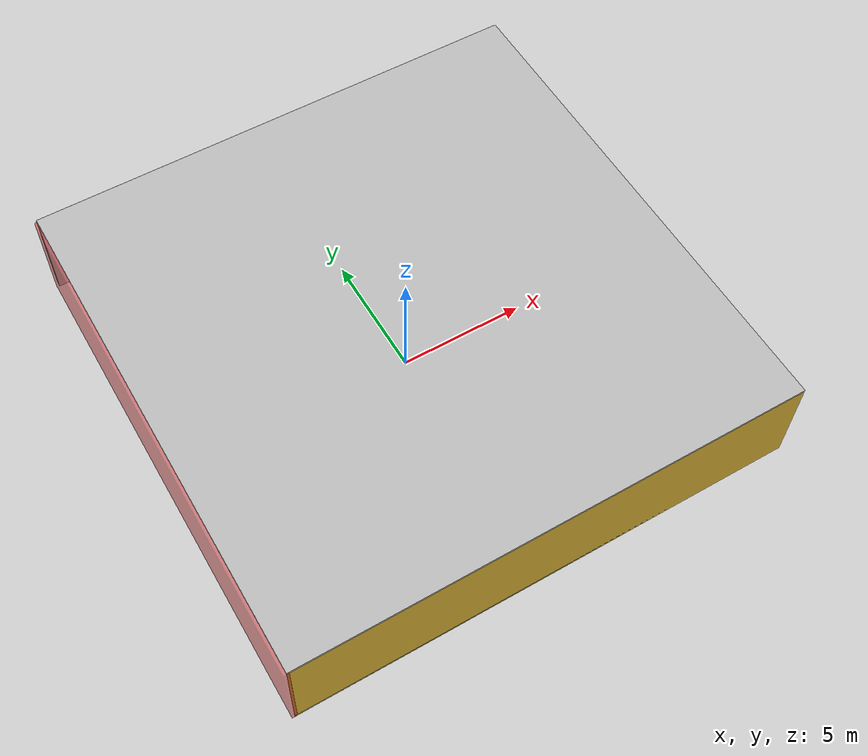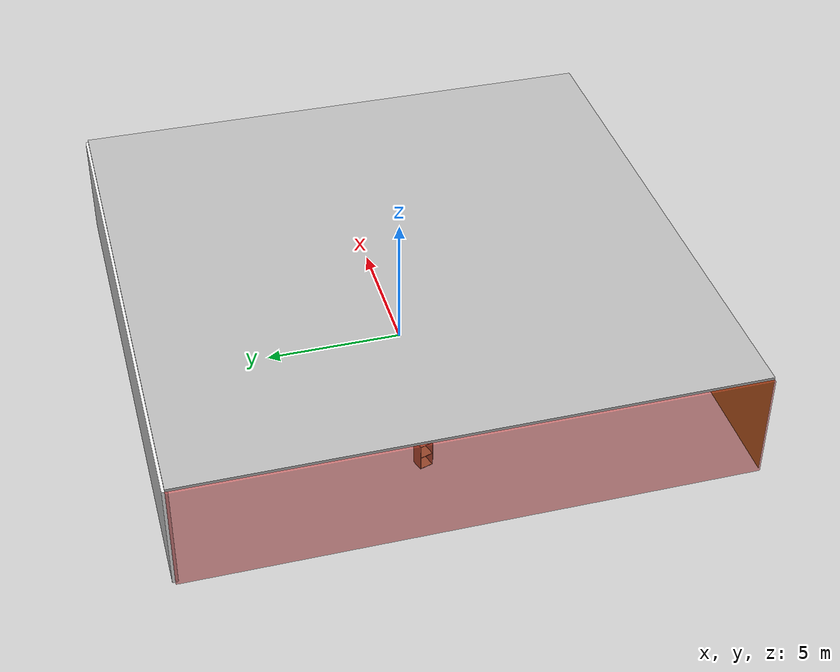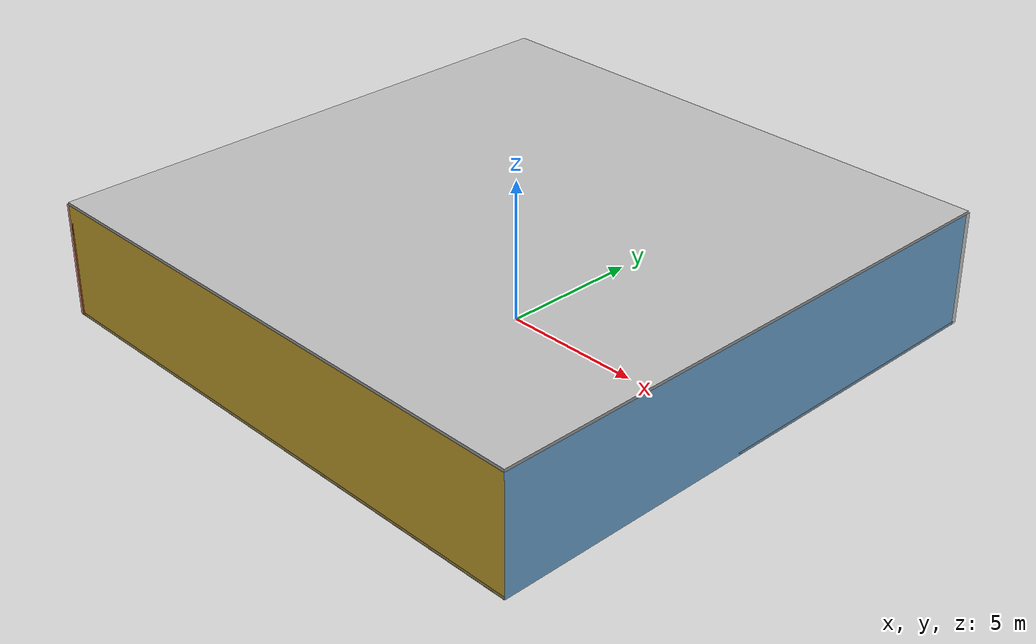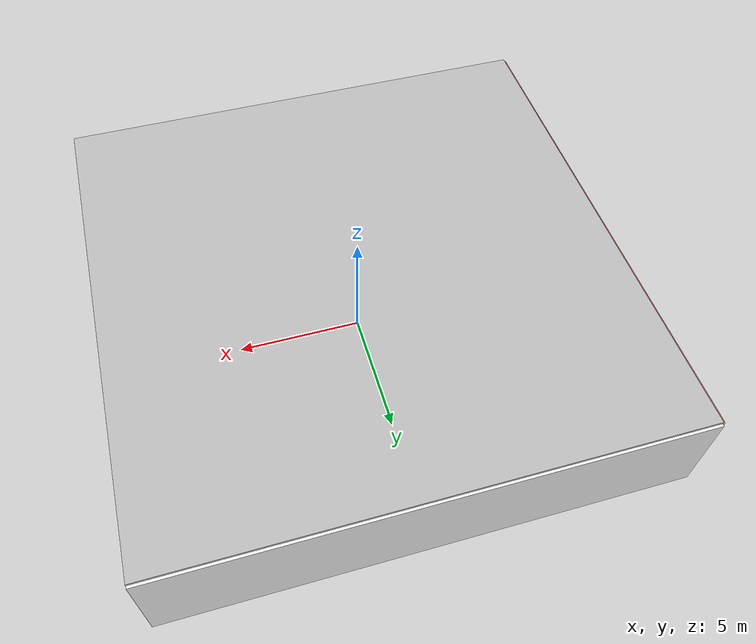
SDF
<sdf version="1.4">
 <world name="default">
  <physics type="ode">
   <max_step_size>0.001</max_step_size>
   <real_time_factor>1</real_time_factor>
   <real_time_update_rate>1000</real_time_update_rate>
   <gravity>0 0 -9.8</gravity>
  </physics>
  <scene><ambient>0.4 0.4 0.4 1</ambient><background>0.7 0.7 0.7 1</background><shadows>1</shadows></scene>
  <model name="Surrounding">
   <static>1</static>
   <link name="Ceiling">
    <collision name="Ceiling_Collision"><geometry><box><size>20 20 0.1</size></box></geometry></collision>
    <visual name="Ceiling_Visual">
     <geometry><box><size>20 20 0.1</size></box></geometry>
     <material>
      <script><uri>file://media/materials/scripts/gazebo.material</uri><name>Gazebo/PioneerBody</name></script>
     </material>
    </visual>
    <pose>0 0 4.05 0 0 0</pose>
   </link>
   <link name="Wall_South">
    <collision name="Wall_South_Collision">
     <geometry><box><size>20 0 4</size></box></geometry>
     <pose>0 0 2 0 -0 0</pose>
    </collision>
    <visual name="Wall_South_Visual">
     <pose>0 0 2 0 -0 0</pose>
     <geometry><box><size>20 0 4</size></box></geometry>
     <material>
      <script><uri>file://media/materials/scripts/gazebo.material</uri><name>Gazebo/Gold</name></script>
     </material>
    </visual>
    <velocity_decay><linear>0</linear><angular>0</angular></velocity_decay>
    <pose>0 -10 0 0 -0 0</pose>
   </link>
   <link name="Wall_East">
    <collision name="Wall_21_Collision">
     <geometry><box><size>20 0 4</size></box></geometry>
     <pose>0 0 2 0 -0 0</pose>
    </collision>
    <visual name="Wall_21_Visual">
     <pose>0 0 2 0 -0 0</pose>
     <geometry><box><size>20 0 4</size></box></geometry>
     <material>
      <script><uri>file://media/materials/scripts/gazebo.material</uri><name>Gazebo/SkyBlue</name></script>
     </material>
    </visual>
    <velocity_decay><linear>0</linear><angular>0</angular></velocity_decay>
    <pose>10 0 0 0 -0 1.5708</pose>
   </link>
   <link name="Wall_North">
    <collision name="Wall_22_Collision">
     <geometry><box><size>20 0.2 4</size></box></geometry>
     <pose>0 0 2 0 -0 0</pose>
    </collision>
    <visual name="Wall_22_Visual">
     <pose>0 0 2 0 -0 0</pose>
     <geometry><box><size>20 0.2 4</size></box></geometry>
     <material>
      <script><uri>file://media/materials/scripts/gazebo.material</uri><name>Gazebo/White</name></script>
     </material>
    </visual>
    <velocity_decay><linear>0</linear><angular>0</angular></velocity_decay>
    <pose>0 10 0 0 -0 0</pose>
   </link>
   <link name="Wall_West">
    <collision name="Wall_23_Collision">
     <geometry><box><size>20 0.2 4</size></box></geometry>
     <pose>0 0 2 0 -0 0</pose>
    </collision>
    <visual name="Wall_23_Visual">
     <pose>0 0 2 0 -0 0</pose>
     <geometry><box><size>20 0.2 4</size></box></geometry>
     <material>
      <script><uri>file://media/materials/scripts/gazebo.material</uri><name>Gazebo/RedTransparent</name></script>
     </material>
    </visual>
    <velocity_decay><linear>0</linear><angular>0</angular></velocity_decay>
    <pose>-10 0 0 0 0 -1.5708</pose>
   </link>
   <link name="Ground_link">
    <collision name="collision">
     <pose>0 0 .05 0 -0 0</pose>
     <geometry><box><size>20 20 0.1</size></box></geometry>
    </collision>
    <visual name="visual">
     <pose>0 0 .05 0 -0 0</pose>
     <geometry><box><size>20 20 0.1</size></box></geometry>
     <material>
      <script><uri>file://media/materials/scripts/gazebo.material</uri><name>Gazebo/GreyTransparent</name></script>
     </material>
    </visual>
   </link>
   <static>1</static>
  </model>
  <spherical_coordinates>
   <surface_model>EARTH_WGS84</surface_model>
   <latitude_deg>0</latitude_deg>
   <longitude_deg>0</longitude_deg>
   <elevation>0</elevation>
   <heading_deg>0</heading_deg>
  </spherical_coordinates>
  <light name="lightball_0" type="diffuse">
   <diffuse>0.8 0.8 0.8 1</diffuse>
   <specular>0.2 0.2 0.2 1</specular>
   <attenuation>
    <range>100</range>
    <constant>0.7</constant>
    <linear>0.01</linear>
    <quadratic>0.001</quadratic>
   </attenuation>
   <direction>-0.5 0.1 -0.9</direction>
   <pose>-4.70055550156 3.84065471931 2.55771270807 0 0 0</pose>
  </light>
  <light name="lightball_1" type="diffuse">
   <diffuse>0.8 0.8 0.8 1</diffuse>
   <specular>0.2 0.2 0.2 1</specular>
   <attenuation>
    <range>100</range>
    <constant>0.7</constant>
    <linear>0.01</linear>
    <quadratic>0.001</quadratic>
   </attenuation>
   <direction>-0.5 0.1 -0.9</direction>
   <pose>5.23121100444 -1.96921695 2.39758695751 0 0 0</pose>
  </light>
  <light name="lightball_2" type="diffuse">
   <diffuse>0.8 0.8 0.8 1</diffuse>
   <specular>0.2 0.2 0.2 1</specular>
   <attenuation>
    <range>100</range>
    <constant>0.7</constant>
    <linear>0.01</linear>
    <quadratic>0.001</quadratic>
   </attenuation>
   <direction>-0.5 0.1 -0.9</direction>
   <pose>-9.63333281508 -5.19274915765 2.83984414373 0 0 0</pose>
  </light>
  <light name="lightball_3" type="diffuse">
   <diffuse>0.8 0.8 0.8 1</diffuse>
   <specular>0.2 0.2 0.2 1</specular>
   <attenuation>
    <range>100</range>
    <constant>0.7</constant>
    <linear>0.01</linear>
    <quadratic>0.001</quadratic>
   </attenuation>
   <direction>-0.5 0.1 -0.9</direction>
   <pose>7.47283272169 -8.0212234542 1.03956465264 0 0 0</pose>
  </light>
  <light name="lightball_4" type="diffuse">
   <diffuse>0.8 0.8 0.8 1</diffuse>
   <specular>0.2 0.2 0.2 1</specular>
   <attenuation>
    <range>100</range>
    <constant>0.7</constant>
    <linear>0.01</linear>
    <quadratic>0.001</quadratic>
   </attenuation>
   <direction>-0.5 0.1 -0.9</direction>
   <pose>-2.01319439655 4.10473107389 1.49834604309 0 0 0</pose>
  </light>
  <light name="lightball_5" type="diffuse">
   <diffuse>0.8 0.8 0.8 1</diffuse>
   <specular>0.2 0.2 0.2 1</specular>
   <attenuation>
    <range>100</range>
    <constant>0.7</constant>
    <linear>0.01</linear>
    <quadratic>0.001</quadratic>
   </attenuation>
   <direction>-0.5 0.1 -0.9</direction>
   <pose>7.75178841522 0.143519662401 0.744425177591 0 0 0</pose>
  </light>
  <light name="lightball_6" type="diffuse">
   <diffuse>0.8 0.8 0.8 1</diffuse>
   <specular>0.2 0.2 0.2 1</specular>
   <attenuation>
    <range>100</range>
    <constant>0.7</constant>
    <linear>0.01</linear>
    <quadratic>0.001</quadratic>
   </attenuation>
   <direction>-0.5 0.1 -0.9</direction>
   <pose>2.64009202118 -7.63911883693 3.51879706246 0 0 0</pose>
  </light>
  <light name="lightball_7" type="diffuse">
   <diffuse>0.8 0.8 0.8 1</diffuse>
   <specular>0.2 0.2 0.2 1</specular>
   <attenuation>
    <range>100</range>
    <constant>0.7</constant>
    <linear>0.01</linear>
    <quadratic>0.001</quadratic>
   </attenuation>
   <direction>-0.5 0.1 -0.9</direction>
   <pose>-7.42241070636 2.76919227183 2.3269041122 0 0 0</pose>
  </light>
  <include><uri>model://cabinet</uri><pose>-6.79400321442 0.972920883265 0 0 0 0.305090193233</pose></include>
  <include>
   <uri>model://construction_cone</uri>
   <pose>-4.88033521079 4.97351225802 0 0 0 1.99117961532</pose>
  </include>
  <include>
   <uri>model://robocup_3Dsim_goal</uri>
   <pose>2.20671878581 7.38328465041 0 0 0 0.841125126285</pose>
  </include>
  <include>
   <uri>model://construction_cone</uri>
   <pose>4.40043930428 -0.746965187939 0 0 0 1.8326432423</pose>
  </include>
  <include><uri>model://cabinet</uri><pose>3.84000763395 1.37139161978 0 0 0 2.89460283311</pose></include>
  <include><uri>model://cabinet</uri><pose>4.98959769229 4.92765545251 0 0 0 1.32264169584</pose></include>
  <include>
   <uri>model://construction_cone</uri>
   <pose>7.90485982203 1.9594104853 0 0 0 1.75229798733</pose>
  </include>
 </world>
</sdf>

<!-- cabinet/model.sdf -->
<sdf version="1.5">
  <model name="cabinet">
    <static>true</static>
    <link name="cabinet_bottom_plate">
      <inertial>
        <pose>0 0 -1 0 0 0</pose>
        <inertia>
          <ixx>2.050000</ixx>
          <ixy>0</ixy>
          <ixz>0</ixz>
          <iyy>2.050000</iyy>
          <iyz>0</iyz>
          <izz>2.050000</izz>
        </inertia>
        <mass>25.000000</mass>
      </inertial>
      <collision name="cabinet_bottom_plate_geom">
        <pose>0 0 0.010000 0 0 0</pose>
        <geometry>
          <box>
            <size>0.450000 0.450000 0.020000</size>
          </box>
        </geometry>
      </collision>
      <visual name="cabinet_bottom_plate_geom_visual">
        <pose>0 0 0.010000 0 0 0</pose>
        <geometry>
          <box>
            <size>0.450000 0.450000 0.020000</size>
          </box>
        </geometry>
        <material>
          <script>
            <uri>model://media/materials/scripts/gazebo.material</uri>
            <name>Gazebo/Wood</name>
          </script>
        </material>
      </visual>
      <collision name="cabinet_bottom_plate_geom_cabinet_back_plate">
        <pose>0.235000 0 0.510000 0 0 0</pose>
        <geometry>
          <box>
            <size>0.020000 0.450000 1.020000</size>
          </box>
        </geometry>
      </collision>
      <visual name="cabinet_bottom_plate_geom_cabinet_back_plate_visual">
        <pose>0.235000 0 0.510000 0 0 0</pose>
        <geometry>
          <box>
            <size>0.020000 0.450000 1.020000</size>
          </box>
        </geometry>
        <material>
          <script>
            <uri>model://media/materials/scripts/gazebo.material</uri>
            <name>Gazebo/Wood</name>
          </script>
        </material>
      </visual>
      <collision name="cabinet_bottom_plate_geom_cabinet_left_plate">
        <pose>0 0.235000 0.510000 0 0 0</pose>
        <geometry>
          <box>
            <size>0.450000 0.020000 1.020000</size>
          </box>
        </geometry>
      </collision>
      <visual name="cabinet_bottom_plate_geom_cabinet_left_plate_visual">
        <pose>0 0.235000 0.510000 0 0 0</pose>
        <geometry>
          <box>
            <size>0.450000 0.020000 1.020000</size>
          </box>
        </geometry>
        <material>
          <script>
            <uri>model://media/materials/scripts/gazebo.material</uri>
            <name>Gazebo/Wood</name>
          </script>
        </material>
      </visual>
      <collision name="cabinet_bottom_plate_geom_cabinet_middle_plate">
        <pose>0 0 0.510000 0 0 0</pose>
        <geometry>
          <box>
            <size>0.450000 0.450000 0.020000</size>
          </box>
        </geometry>
      </collision>
      <visual name="cabinet_bottom_plate_geom_cabinet_middle_plate_visual">
        <pose>0 0 0.510000 0 0 0</pose>
        <geometry>
          <box>
            <size>0.450000 0.450000 0.020000</size>
          </box>
        </geometry>
        <material>
          <script>
            <uri>model://media/materials/scripts/gazebo.material</uri>
            <name>Gazebo/Wood</name>
          </script>
        </material>
      </visual>
      <collision name="cabinet_bottom_plate_geom_cabinet_right_plate">
        <pose>0 -0.235000 0.510000 0 0 0</pose>
        <geometry>
          <box>
            <size>0.450000 0.020000 1.020000</size>
          </box>
        </geometry>
      </collision>
      <visual name="cabinet_bottom_plate_geom_cabinet_right_plate_visual">
        <pose>0 -0.235000 0.510000 0 0 0</pose>
        <geometry>
          <box>
            <size>0.450000 0.020000 1.020000</size>
          </box>
        </geometry>
        <material>
          <script>
            <uri>model://media/materials/scripts/gazebo.material</uri>
            <name>Gazebo/Wood</name>
          </script>
        </material>
      </visual>
      <collision name="cabinet_bottom_plate_geom_cabinet_top_plate">
        <pose>0 0 1.010000 0 0 0</pose>
        <geometry>
          <box>
            <size>0.450000 0.450000 0.020000</size>
          </box>
        </geometry>
      </collision>
      <visual name="cabinet_bottom_plate_geom_cabinet_top_plate_visual">
        <pose>0 0 1.010000 0 0 0</pose>
        <geometry>
          <box>
            <size>0.450000 0.450000 0.020000</size>
          </box>
        </geometry>
        <material>
          <script>
            <uri>model://media/materials/scripts/gazebo.material</uri>
            <name>Gazebo/Wood</name>
          </script>
        </material>
      </visual>
    </link>
  </model>
</sdf>

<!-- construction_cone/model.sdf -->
<sdf version="1.5">
  <model name="Construction Cone">
    <link name="link">
      <collision name="collision">
        <geometry>
          <mesh>
            <scale>10 10 10</scale>
            <uri>file://isr-testbed/construction_cone/meshes/construction_cone.dae</uri>
          </mesh>
        </geometry>
      </collision>
      <visual name="visual">
        <geometry>
          <mesh>
            <scale>10 10 10</scale>
            <uri>file://isr-testbed/construction_cone/meshes/construction_cone.dae</uri>
          </mesh>
        </geometry>
      </visual>
    </link>
  </model>
</sdf>

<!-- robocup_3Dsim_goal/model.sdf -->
<sdf version="1.5">
  <model name="robocup_3d_goal">
    <static>true</static>
    <link name="left_post">
      <pose>0 1.05 0.45 0 0 0</pose>
      <collision name="collision">
        <geometry>
          <cylinder>
            <radius>0.05</radius>
            <length>0.9</length>
          </cylinder>
        </geometry>
      </collision>
      <visual name="visual">
        <geometry>
          <cylinder>
            <radius>0.05</radius>
            <length>0.9</length>
          </cylinder>
        </geometry>
        <material>
          <script>
            <uri>file://media/materials/scripts/gazebo.material</uri>
            <name>Gazebo/ZincYellow</name>
          </script>
        </material>
      </visual>
    </link>
    <link name="left_support_horiz_lower">
      <pose>0.30 1.05 0.01 0 0 0</pose>
      <collision name="collision">
        <geometry>
          <box>
            <size>0.50 0.02 0.02</size>
          </box>
        </geometry>
      </collision>
      <visual name="visual">
        <geometry>
          <box>
            <size>0.50 0.02 0.02</size>
          </box>
        </geometry>
        <material>
          <script>
            <uri>file://media/materials/scripts/gazebo.material</uri>
            <name>Gazebo/White</name>
          </script>
        </material>
      </visual>
    </link>
    <link name="left_support_horiz_upper">
      <pose>0.30 1.05 0.79 0 0 0</pose>
      <collision name="collision">
        <geometry>
          <box>
            <size>0.50 0.02 0.02</size>
          </box>
        </geometry>
      </collision>
      <visual name="visual">
        <geometry>
          <box>
            <size>0.50 0.02 0.02</size>
          </box>
        </geometry>
        <material>
          <script>
            <uri>file://media/materials/scripts/gazebo.material</uri>
            <name>Gazebo/White</name>
          </script>
        </material>
      </visual>
    </link>
    <link name="left_support_vertical">
      <pose>0.56 1.05 0.4 0 1.5708 0</pose>
      <collision name="collision">
        <geometry>
          <box>
            <size>0.80 0.02 0.02</size>
          </box>
        </geometry>
      </collision>
      <visual name="visual">
        <geometry>
          <box>
            <size>0.80 0.02 0.02</size>
          </box>
        </geometry>
        <material>
          <script>
            <uri>file://media/materials/scripts/gazebo.material</uri>
            <name>Gazebo/White</name>
          </script>
        </material>
      </visual>
    </link>
    <link name="right_support_horiz_lower">
      <pose>0.30 -1.05 0.01 0 0 0</pose>
      <collision name="collision">
        <geometry>
          <box>
            <size>0.50 0.02 0.02</size>
          </box>
        </geometry>
      </collision>
      <visual name="visual">
        <geometry>
          <box>
            <size>0.50 0.02 0.02</size>
          </box>
        </geometry>
        <material>
          <script>
            <uri>file://media/materials/scripts/gazebo.material</uri>
            <name>Gazebo/White</name>
          </script>
        </material>
      </visual>
    </link>
    <link name="right_support_horiz_upper">
      <pose>0.30 -1.05 0.79 0 0 0</pose>
      <collision name="collision">
        <geometry>
          <box>
            <size>0.50 0.02 0.02</size>
          </box>
        </geometry>
      </collision>
      <visual name="visual">
        <geometry>
          <box>
            <size>0.50 0.02 0.02</size>
          </box>
        </geometry>
        <material>
          <script>
            <uri>file://media/materials/scripts/gazebo.material</uri>
            <name>Gazebo/White</name>
          </script>
        </material>
      </visual>
    </link>
    <link name="right_support_vertical">
      <pose>0.56 -1.05 0.4 0 1.5708 0</pose>
      <collision name="collision">
        <geometry>
          <box>
            <size>0.80 0.02 0.02</size>
          </box>
        </geometry>
      </collision>
      <visual name="visual">
        <geometry>
          <box>
            <size>0.80 0.02 0.02</size>
          </box>
        </geometry>
        <material>
          <script>
            <uri>file://media/materials/scripts/gazebo.material</uri>
            <name>Gazebo/White</name>
          </script>
        </material>
      </visual>
    </link>
    <link name="center_support_horiz_lower">
      <pose>0.56 0 0.01 0 1.5708 0</pose>
      <collision name="collision">
        <geometry>
          <box>
            <size>0.02 2.08 0.02</size>
          </box>
        </geometry>
      </collision>
      <visual name="visual">
        <geometry>
          <box>
            <size>0.02 2.08 0.02</size>
          </box>
        </geometry>
        <material>
          <script>
            <uri>file://media/materials/scripts/gazebo.material</uri>
            <name>Gazebo/White</name>
          </script>
        </material>
      </visual>
    </link>
    <link name="center_support_horiz_upper">
      <pose>0.56 0 0.79 0 1.5708 0</pose>
      <collision name="collision">
        <geometry>
          <box>
            <size>0.02 2.08 0.02</size>
          </box>
        </geometry>
      </collision>
      <visual name="visual">
        <geometry>
          <box>
            <size>0.02 2.08 0.02</size>
          </box>
        </geometry>
        <material>
          <script>
            <uri>file://media/materials/scripts/gazebo.material</uri>
            <name>Gazebo/White</name>
          </script>
        </material>
      </visual>
    </link>
    <link name="right_post">
      <pose>0 -1.05 0.45 0 0 0</pose>
      <collision name="collision">
        <geometry>
          <cylinder>
            <radius>0.05</radius>
            <length>0.9</length>
          </cylinder>
        </geometry>
      </collision>
      <visual name="visual">
        <geometry>
          <cylinder>
            <radius>0.05</radius>
            <length>0.9</length>
          </cylinder>
        </geometry>
        <material>
          <script>
            <uri>file://media/materials/scripts/gazebo.material</uri>
            <name>Gazebo/ZincYellow</name>
          </script>
        </material>
      </visual>
    </link>
    <link name="crossbar">
      <pose>0 0 0.85 1.57 1.57 0</pose>
      <collision name="collision">
        <geometry>
          <cylinder>
            <radius>0.05</radius>
            <length>2.0</length>
          </cylinder>
        </geometry>
      </collision>
      <visual name="visual">
        <geometry>
          <cylinder>
            <radius>0.05</radius>
            <length>2.0</length>
          </cylinder>
        </geometry>
        <material>
          <script>
            <uri>file://media/materials/scripts/gazebo.material</uri>
            <name>Gazebo/ZincYellow</name>
          </script>
        </material>
      </visual>
    </link>
    <link name="center_net">
      <pose>0.56 0 0.40 0 0 0</pose>
      <collision name="collision">
        <geometry>
          <box>
            <size>0.01 2.1 0.80</size>
          </box>
        </geometry>
      </collision>
      <visual name="visual">
        <geometry>
          <box>
            <size>0.01 2.1 0.80</size>
          </box>
        </geometry>
        <material>
          <script>
            <uri>model://../model_source/models/robocup09_spl_field/materials/scripts/</uri>
            <uri>model://../model_source/models/robocup09_spl_field/materials/textures/</uri>
            <name>RoboCup/Net</name>
          </script>
        </material>
      </visual>
    </link>
    <link name="left_net">
      <pose>0.30 1.05 0.40 0 0 0</pose>
      <collision name="collision">
        <geometry>
          <box>
            <size>0.50 0.01 0.76</size>
          </box>
        </geometry>
      </collision>
      <visual name="visual">
        <geometry>
          <box>
            <size>0.50 0.01 0.76</size>
          </box>
        </geometry>
        <material>
          <script>
            <uri>model://../model_source/models/robocup09_spl_field/materials/scripts/</uri>
            <uri>model://../model_source/models/robocup09_spl_field/materials/textures/</uri>
            <name>RoboCup/Net</name>
          </script>
        </material>
      </visual>
    </link>
    <link name="right_net">
      <pose>0.30 -1.05 0.40 0 0 0</pose>
      <collision name="collision">
        <geometry>
          <box>
            <size>0.50 0.01 0.76</size>
          </box>
        </geometry>
      </collision>
      <visual name="visual">
        <geometry>
          <box>
            <size>0.50 0.01 0.76</size>
          </box>
        </geometry>
        <material>
          <script>
            <uri>model://../model_source/models/robocup09_spl_field/materials/scripts/</uri>
            <uri>model://../model_source/models/robocup09_spl_field/materials/textures/</uri>
            <name>RoboCup/Net</name>
          </script>
        </material>
      </visual>
    </link>
  </model>
</sdf>
